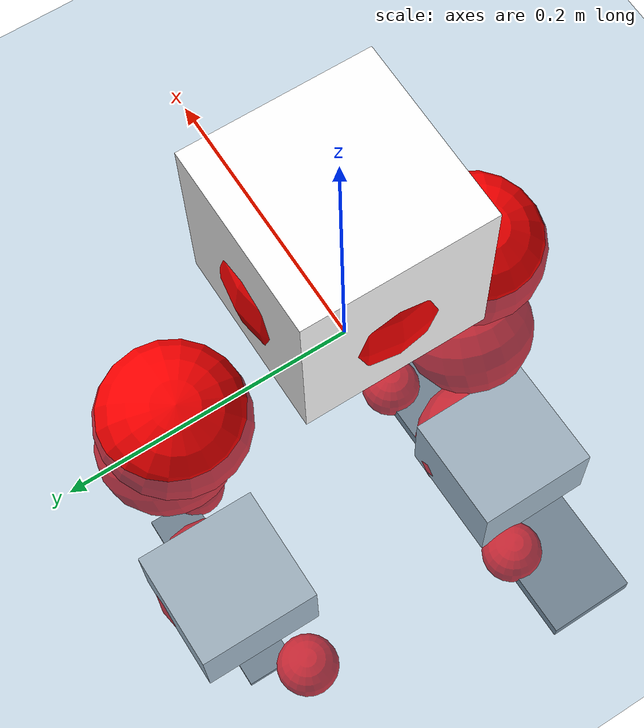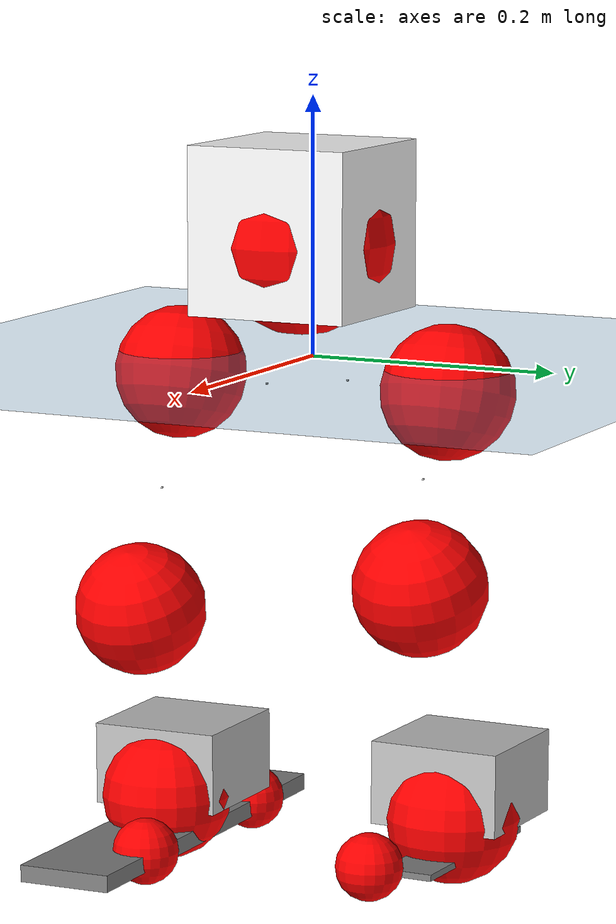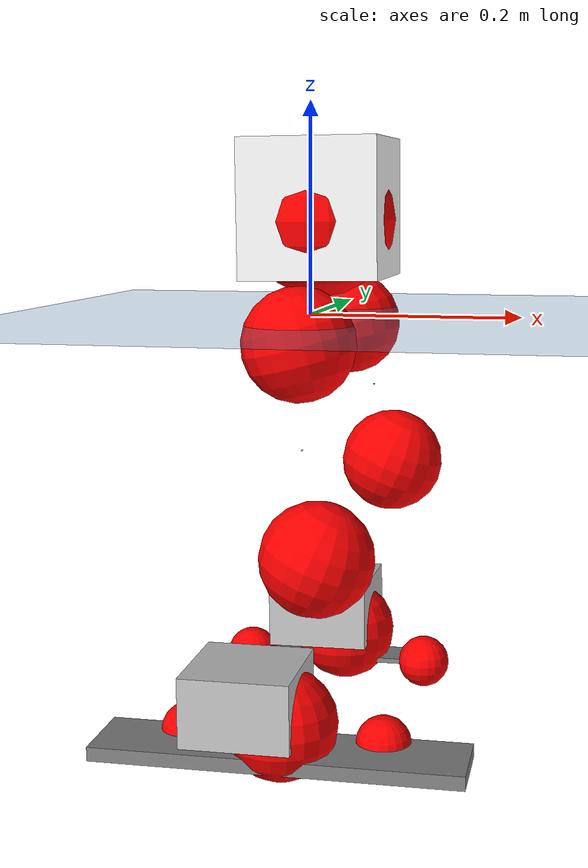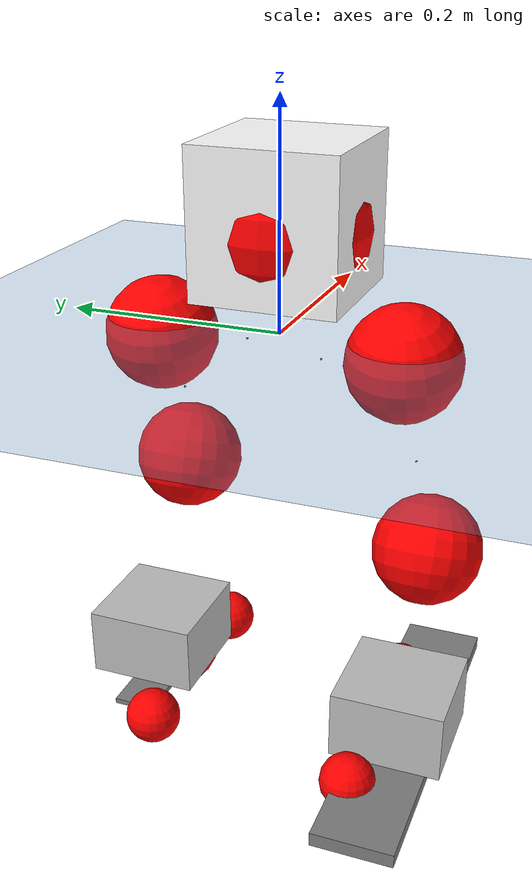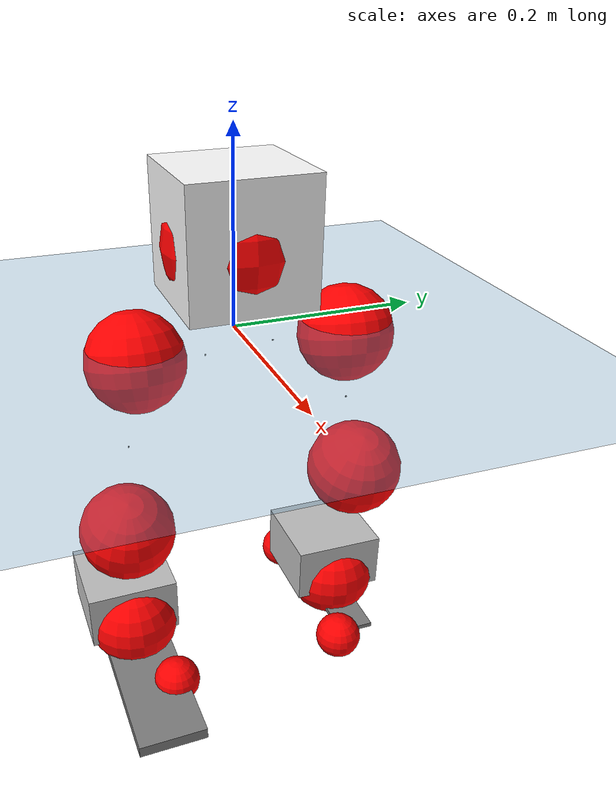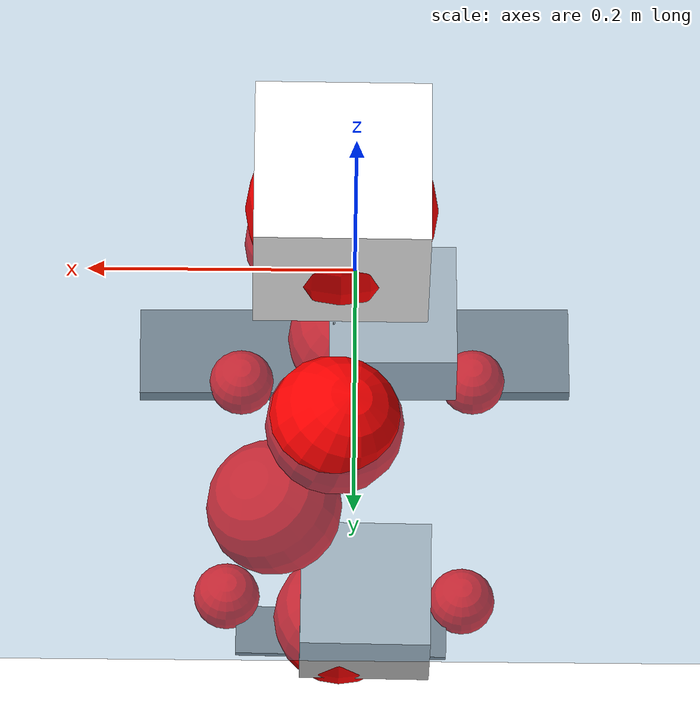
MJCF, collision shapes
<mujoco model="pi_12dof_release_v1">
  <compiler angle="radian" assetdir="assets" balanceinertia="true" inertiafromgeom="false"/>

  <option timestep="0.005" density="1.2" viscosity="2e-05"/>

  <size nkey="1"/>

  <visual>
    <quality shadowsize="8192"/>
    <map shadowclip="0.5"/>
  </visual>

  <default>
    <default class="/">
      <joint armature="0.01" damping="0.01" frictionloss="0.01"/>
      <geom contype="0" conaffinity="0" group="1" solref="-1000 -80"/>
      <site size="0.01 0.005 0.005" group="5"/>
      <general forcelimited="true" biastype="affine" gainprm="20" biasprm="0 -20 -0.5"/>
      <default class="foot">
        <geom size="0.0845 0.036 0.005" type="box" condim="6" group="4" priority="1" friction="0.9 0.2 0.2" solimp="0.015 1 0.005"/>
      </default>
      <default class="reward_collision_sphere">
        <geom group="5" rgba="1 0 0 1"/>
      </default>
    </default>
  </default>

  <asset>
    <texture type="skybox" colorspace="auto" name="//unnamed_texture_0" builtin="gradient" rgb1="0.95 0.95 0.95" rgb2="0.95 0.95 0.95" width="100" height="600"/>
    <texture type="2d" colorspace="auto" name="texplane" builtin="checker" rgb1="0.345 0.575 0.748" rgb2="0.345 0.575 0.748" markrgb="1 1 1" width="512" height="512"/>
    <material name="MatPlane" class="/" texture="texplane" texuniform="true" texrepeat="2 2" specular="0.9"/>
    <mesh name="baselink_1" class="/" file="baselink_1.STL"/>
    <mesh name="r_hip_pitch_link" class="/" file="r_hip_pitch_link.STL"/>
    <mesh name="r_hip_roll_link" class="/" file="r_hip_roll_link.STL"/>
    <mesh name="r_thigh_link" class="/" file="r_thigh_link.STL"/>
    <mesh name="r_calf_link" class="/" file="r_calf_link.STL"/>
    <mesh name="r_ankle_pitch_link" class="/" file="r_ankle_pitch_link.STL"/>
    <mesh name="r_ankle_roll_link" class="/" file="r_ankle_roll_link.STL"/>
    <mesh name="l_hip_pitch_link" class="/" file="l_hip_pitch_link.STL"/>
    <mesh name="l_hip_roll_link" class="/" file="l_hip_roll_link.STL"/>
    <mesh name="l_thigh_link" class="/" file="l_thigh_link.STL"/>
    <mesh name="l_calf_link" class="/" file="l_calf_link.STL"/>
    <mesh name="l_ankle_pitch_link" class="/" file="l_ankle_pitch_link.STL"/>
    <mesh name="l_ankle_roll_link" class="/" file="l_ankle_roll_link.STL"/>
  </asset>

  <worldbody>
    <geom name="floor" class="/" size="100 100 0.125" type="plane" group="0" material="MatPlane"/>
    <light name="toplight_shadow" class="/" pos="0 0 5" dir="0.0990148 0.0990148 -0.990148" type="directional" ambient="0.04 0.04 0.04" diffuse="0.55 0.55 0.55" specular="0.12 0.12 0.12"/>
    <light name="toplight_fill" class="/" pos="0 0 5" dir="0.0990148 0.0990148 -0.990148" type="directional" castshadow="false" ambient="0.04 0.04 0.04" diffuse="0.3 0.3 0.3" specular="0.08 0.08 0.08"/>
    <body name="trunk" pos="0.0113598 -0.00353903 0.0087588" quat="0.999987 0.00166951 -0.00489069 -4.91126e-05">
      <inertial pos="0.0122739 -0.00933659 0.0447114" quat="0.689706 0.0414664 0.0644265 0.720025" mass="4.29758" diaginertia="0.0349628 0.0435784 0.00599523"/>
      <joint name="//unnamed_joint_0" type="free"/>
      <geom name="//unnamed_geom_1" class="/" type="mesh" density="0" rgba="1 1 1 1" mesh="baselink_1"/>
      <geom name="//unnamed_geom_2" class="/" size="0.0647872 0.0647872 0.0647872" pos="0 0 0.0915743" type="box" rgba="1 1 1 1"/>
      <geom name="//unnamed_geom_3" class="reward_collision_sphere" size="0.0712659" pos="0 0 0.0801275"/>
      <site name="imu" class="/" pos="-0.0468361 0.0831053 0.034372" size="0.0129574"/>
      <camera name="track" class="/" pos="0 -2.74545 0" quat="0.707107 0.707107 0 0" mode="trackcom"/>
      <camera name="ego_camera" class="/" pos="0.102737 0 0.206042" quat="-0.5 -0.5 0.5 0.5"/>
      <body name="r_hip_pitch_link" pos="-0.0011286 -0.0310627 -0.0311841" quat="0.992741 0.00527936 -0.120084 0.00404738">
        <inertial pos="0.0101524 -0.077779 0.00525838" quat="-0.0424027 0.678775 0.00921866 0.733063" mass="0.653216" diaginertia="0.000428506 0.000390574 0.000118185"/>
        <joint name="r_hip_pitch_joint" class="/" pos="0 0 0" axis="0.0275364 -0.999361 0.0227879" stiffness="0.0713072" range="-1.75678 1.20813" armature="0.0189026" damping="0.00035218" frictionloss="0.00922305"/>
        <geom name="//unnamed_geom_4" class="/" type="mesh" density="0" rgba="0.75294 0.75294 0.75294 1" mesh="r_hip_pitch_link"/>
        <geom name="//unnamed_geom_5" class="/" size="0.000647872 0.000647872 0.000647872" type="box" rgba="0.75294 0.75294 0.75294 1"/>
        <body name="r_hip_roll_link" pos="0.00333132 -0.073283 0.00493229" quat="1 -4.80576e-05 5.28048e-05 -2.60099e-05">
          <inertial pos="-0.000832555 0.0150019 -0.0529467" quat="0.717727 -0.0846757 -0.103682 0.683336" mass="0.869366" diaginertia="0.00149781 0.00148016 0.000233507"/>
          <joint name="r_hip_roll_joint" class="/" pos="0 0 0" axis="-0.998359 -0.0328526 0.0468957" stiffness="0.0484332" range="-0.171523 0.20784" armature="0.00830765" damping="0.0427342" frictionloss="0.0171047"/>
          <geom name="//unnamed_geom_6" class="/" type="mesh" density="0" rgba="0.75294 0.75294 0.75294 1" mesh="r_hip_roll_link"/>
          <geom name="//unnamed_geom_7" class="/" size="0.000647872 0.000647872 0.000647872" type="box" rgba="0.75294 0.75294 0.75294 1"/>
          <geom name="//unnamed_geom_8" class="reward_collision_sphere" size="0.0518297"/>
          <body name="r_thigh_link" pos="-0.017114 -0.0154396 -0.0903141" quat="1 -0.000208571 -6.71166e-05 -0.000199957">
            <inertial pos="0.00597781 0.0109697 -0.0653364" quat="0.738201 0.674575 0.00261551 0.00040747" mass="0.198646" diaginertia="0.000514596 0.000485437 0.000113657"/>
            <joint name="r_thigh_joint" class="/" pos="0 0 0" axis="0.050629 0.0130166 -0.998633" range="-0.418548 0.443121" armature="0.00996477" damping="0.0653229" frictionloss="0.0237704"/>
            <geom name="//unnamed_geom_9" class="/" type="mesh" density="0" rgba="0.75294 0.75294 0.75294 1" mesh="r_thigh_link"/>
            <geom name="//unnamed_geom_10" class="/" size="0.000647872 0.000647872 0.000647872" type="box" rgba="0.75294 0.75294 0.75294 1"/>
            <body name="r_calf_link" pos="-0.008456 -0.0125792 -0.0954633" quat="0.947584 -5.18406e-05 0.319507 -0.000479628">
              <inertial pos="0.00516879 0.00931814 -0.0808743" quat="0.997249 0.0497334 0.0316554 0.0449411" mass="1.4247" diaginertia="0.0152998 0.0125064 0.000263168"/>
              <joint name="r_calf_joint" class="/" pos="0 0 0" axis="-0.0145742 -0.999736 0.0177717" stiffness="0.0712849" range="-1.94028 0.636119" armature="0.0215292" damping="0" frictionloss="0.013542"/>
              <geom name="//unnamed_geom_11" class="/" type="mesh" density="0" rgba="0.75294 0.75294 0.75294 1" mesh="r_calf_link"/>
              <geom name="//unnamed_geom_12" class="/" size="0.000647872 0.000647872 0.000647872" type="box" rgba="0.75294 0.75294 0.75294 1"/>
              <geom name="//unnamed_geom_13" class="reward_collision_sphere" size="0.0518297"/>
              <body name="r_ankle_pitch_link" pos="-0.00832286 0.0014494 -0.147794" quat="0.97994 -0.00289503 -0.199271 0.000916901">
                <inertial pos="0.0056944 0.00474671 0.0153468" quat="-0.068538 0.732391 0.0219683 0.677069" mass="0.286766" diaginertia="0.00134023 0.000880556 0.000191849"/>
                <joint name="r_ankle_pitch_joint" class="/" pos="0 0 0" axis="0.010577 -0.99938 -0.0335733" range="-1.29045 0.179954" armature="0.0131696" damping="0.0134776" frictionloss="0.00411542"/>
                <geom name="//unnamed_geom_14" class="/" type="mesh" density="0" rgba="0.75294 0.75294 0.75294 1" mesh="r_ankle_pitch_link"/>
                <geom name="//unnamed_geom_15" class="/" size="0.050534 0.0518297 0.0323936" type="box" rgba="0.75294 0.75294 0.75294 1"/>
                <body name="r_ankle_roll_link" pos="0.100056 0.00135536 -0.000342695" quat="1 1.84247e-06 -2.27873e-07 -4.79415e-06">
                  <inertial pos="-0.0369922 -0.000710501 -0.0335277" quat="0.528749 0.417676 0.456187 0.581261" mass="1.5763" diaginertia="0.00599052 0.00484255 0.000795749"/>
                  <joint name="r_ankle_roll_joint" class="/" pos="0 0 0" axis="-0.997415 -0.0703166 -0.0147834" range="-0.365497 0.425126" armature="0.0233544" damping="0" frictionloss="0.019005"/>
                  <geom name="//unnamed_geom_16" class="/" type="mesh" density="0" rgba="0.75294 0.75294 0.75294 1" mesh="r_ankle_roll_link"/>
                  <geom name="//unnamed_geom_17" class="/" type="mesh" rgba="0.75294 0.75294 0.75294 1" mesh="r_ankle_roll_link"/>
                  <geom name="right_foot" class="foot" size="0.171935 0.0374853 0.00661349" pos="-0.0698611 0 -0.0503659"/>
                  <geom name="//unnamed_geom_19" class="reward_collision_sphere" size="0.0518297" pos="-0.0684913 0 -0.0228936"/>
                  <geom name="//unnamed_geom_20" class="reward_collision_sphere" size="0.0259149" pos="0.0205474 0.0274545 -0.0457872"/>
                  <geom name="//unnamed_geom_21" class="reward_collision_sphere" size="0.0259149" pos="-0.164379 0.0274545 -0.0457872"/>
                  <site name="right_foot" class="foot" pos="-0.0698611 0 -0.0503659" size="0.0129574"/>
                </body>
              </body>
            </body>
          </body>
        </body>
      </body>
      <body name="l_hip_pitch_link" pos="0.00414837 0.0404125 -0.0231324" quat="0.992178 -5.37607e-05 -0.124831 -8.60035e-05">
        <inertial pos="0.000790627 0.0769925 0.0141096" quat="-0.0399828 0.694978 0.0378264 0.716922" mass="0.721925" diaginertia="0.000534084 0.000604287 0.000199693"/>
        <joint name="l_hip_pitch_joint" class="/" pos="0 0 0" axis="0.0367268 0.998912 -0.0287257" stiffness="0.00222472" range="-1.48328 1.70785" armature="0.00471484" damping="0.000514647" frictionloss="0.0153519"/>
        <geom name="//unnamed_geom_22" class="/" type="mesh" density="0" rgba="0.75294 0.75294 0.75294 1" mesh="l_hip_pitch_link"/>
        <geom name="//unnamed_geom_23" class="/" size="0.000647872 0.000647872 0.000647872" type="box" rgba="0.75294 0.75294 0.75294 1"/>
        <body name="l_hip_roll_link" pos="-0.00208563 0.0832637 -0.00336498" quat="1 -0.000179598 -0.000292197 -0.000560098">
          <inertial pos="0.0111126 -0.00355805 -0.0530605" quat="0.672258 -0.119911 -0.123699 0.719993" mass="0.804634" diaginertia="0.0017272 0.00120719 0.000269756"/>
          <joint name="l_hip_roll_joint" class="/" pos="0 0 0" axis="-0.999782 -0.0107292 -0.0179178" range="-0.199264 -0.129494" armature="0.019209" damping="0.0916347" frictionloss="0.0129008"/>
          <geom name="//unnamed_geom_24" class="/" type="mesh" density="0" rgba="0.75294 0.75294 0.75294 1" mesh="l_hip_roll_link"/>
          <geom name="//unnamed_geom_25" class="/" size="0.000647872 0.000647872 0.000647872" type="box" rgba="0.75294 0.75294 0.75294 1"/>
          <geom name="//unnamed_geom_26" class="reward_collision_sphere" size="0.0518297"/>
          <body name="l_thigh_link" pos="0.00996135 -0.00778756 -0.0674224" quat="1 0.000581927 -0.000566493 0.000175223">
            <inertial pos="-0.00950652 0.00835094 -0.0651597" quat="0.640816 0.766435 -0.0389642 -0.0203269" mass="0.282164" diaginertia="0.000600585 0.000419816 0.000123651"/>
            <joint name="l_thigh_joint" class="/" pos="0 0 0" axis="-0.0058992 -0.0071281 -0.999957" stiffness="0.0799618" range="-0.614522 0.481134" armature="0.0143103" damping="0.00211922" frictionloss="0.0150429"/>
            <geom name="//unnamed_geom_27" class="/" type="mesh" density="0" rgba="0.75294 0.75294 0.75294 1" mesh="l_thigh_link"/>
            <geom name="//unnamed_geom_28" class="/" size="0.000647872 0.000647872 0.000647872" type="box" rgba="0.75294 0.75294 0.75294 1"/>
            <body name="l_calf_link" pos="-0.00272758 0.006031 -0.0818652" quat="0.947786 -0.00256 0.318889 -0.00241484">
              <inertial pos="-0.000559601 -0.0087643 -0.0684706" quat="0.999976 0.00454483 -0.00236041 0.00476787" mass="1.91348" diaginertia="0.021394 0.0215883 0.000416091"/>
              <joint name="l_calf_joint" class="/" pos="0 0 0" axis="-0.0016905 0.999998 -0.000878681" range="-0.974865 1.36412" armature="0.0136984" damping="0.00407104" frictionloss="0.00871197"/>
              <geom name="//unnamed_geom_29" class="/" type="mesh" density="0" rgba="0.75294 0.75294 0.75294 1" mesh="l_calf_link"/>
              <geom name="//unnamed_geom_30" class="/" size="0.000647872 0.000647872 0.000647872" type="box" rgba="0.75294 0.75294 0.75294 1"/>
              <geom name="//unnamed_geom_31" class="reward_collision_sphere" size="0.0518297"/>
              <body name="l_ankle_pitch_link" pos="-0.00437568 0.00237507 -0.175256" quat="0.980054 -0.000148958 -0.198734 -6.64729e-05">
                <inertial pos="0.0165684 -0.0124859 -0.00145963" quat="0.00143127 0.707216 0.000873202 0.706995" mass="0.515777" diaginertia="0.00154812 0.00129766 0.000229964"/>
                <joint name="l_ankle_pitch_joint" class="/" pos="0 0 0" axis="0.00106 0.999999 0.000762793" stiffness="0.00401119" range="-0.215979 1.38808" armature="0.0204381" damping="0.016812" frictionloss="0.0098067"/>
                <geom name="//unnamed_geom_32" class="/" type="mesh" density="0" rgba="0.75294 0.75294 0.75294 1" mesh="l_ankle_pitch_link"/>
                <geom name="//unnamed_geom_33" class="/" size="0.050534 0.0518297 0.0323936" type="box" rgba="0.75294 0.75294 0.75294 1"/>
                <body name="l_ankle_roll_link" pos="0.0877878 0.00252444 -0.00387113" quat="0.999998 -0.000652675 -0.00104757 -0.00152029">
                  <inertial pos="-0.0393553 -0.000617616 -0.0172522" quat="0.555545 0.447264 0.431194 0.552627" mass="1.47085" diaginertia="0.00655858 0.00587969 0.000616007"/>
                  <joint name="l_ankle_roll_joint" class="/" pos="0 0 0" axis="-0.999542 -0.0275012 0.0125892" stiffness="0.000814728" range="-0.281584 0.166396" armature="0.00548861" damping="0.0115077" frictionloss="0.0127778"/>
                  <geom name="//unnamed_geom_34" class="/" type="mesh" density="0" rgba="0.75294 0.75294 0.75294 1" mesh="l_ankle_roll_link"/>
                  <geom name="//unnamed_geom_35" class="/" type="mesh" rgba="0.75294 0.75294 0.75294 1" mesh="l_ankle_roll_link"/>
                  <geom name="left_foot" class="foot" size="0.0826175 0.0201846 0.00250869" pos="-0.0698611 0 -0.0503659"/>
                  <geom name="//unnamed_geom_37" class="reward_collision_sphere" size="0.0518297" pos="-0.0684913 0 -0.0228936"/>
                  <geom name="//unnamed_geom_38" class="reward_collision_sphere" size="0.0259149" pos="0.0205474 -0.0274545 -0.0457872"/>
                  <geom name="//unnamed_geom_39" class="reward_collision_sphere" size="0.0259149" pos="-0.164379 -0.0274545 -0.0457872"/>
                  <site name="left_foot" class="foot" pos="-0.0698611 0 -0.0503659" size="0.0129574"/>
                </body>
              </body>
            </body>
          </body>
        </body>
      </body>
    </body>
  </worldbody>

  <contact>
    <pair class="/" geom1="floor" geom2="right_foot" name="//unnamed_contact_1"/>
    <pair class="/" geom1="floor" geom2="left_foot" name="//unnamed_contact_0"/>
  </contact>

  <actuator>
    <general name="r_hip_pitch_joint" class="/" joint="r_hip_pitch_joint" forcerange="-26.7446 26.7446" gainprm="26.2008" biasprm="0 -26.2008 -0.687801"/>
    <general name="r_hip_roll_joint" class="/" joint="r_hip_roll_joint" forcerange="-41.3998 41.3998" gainprm="26.2008" biasprm="0 -26.2008 -0.687801"/>
    <general name="r_thigh_joint" class="/" joint="r_thigh_joint" forcerange="-18.077 18.077" gainprm="26.2008" biasprm="0 -26.2008 -0.687801"/>
    <general name="r_calf_joint" class="/" joint="r_calf_joint" forcerange="-33.6659 33.6659" gainprm="26.2008" biasprm="0 -26.2008 -0.687801"/>
    <general name="r_ankle_pitch_joint" class="/" joint="r_ankle_pitch_joint" forcerange="-20.0967 20.0967" gainprm="26.2008" biasprm="0 -26.2008 -0.687801"/>
    <general name="r_ankle_roll_joint" class="/" joint="r_ankle_roll_joint" forcerange="-17.7454 17.7454" gainprm="26.2008" biasprm="0 -26.2008 -0.687801"/>
    <general name="l_hip_pitch_joint" class="/" joint="l_hip_pitch_joint" forcerange="-23.0586 23.0586" gainprm="26.2008" biasprm="0 -26.2008 -0.687801"/>
    <general name="l_hip_roll_joint" class="/" joint="l_hip_roll_joint" forcerange="-13.6428 13.6428" gainprm="26.2008" biasprm="0 -26.2008 -0.687801"/>
    <general name="l_thigh_joint" class="/" joint="l_thigh_joint" forcerange="-41.927 41.927" gainprm="26.2008" biasprm="0 -26.2008 -0.687801"/>
    <general name="l_calf_joint" class="/" joint="l_calf_joint" forcerange="-24.7278 24.7278" gainprm="26.2008" biasprm="0 -26.2008 -0.687801"/>
    <general name="l_ankle_pitch_joint" class="/" joint="l_ankle_pitch_joint" forcerange="-17.0294 17.0294" gainprm="26.2008" biasprm="0 -26.2008 -0.687801"/>
    <general name="l_ankle_roll_joint" class="/" joint="l_ankle_roll_joint" forcerange="-9.85742 9.85742" gainprm="26.2008" biasprm="0 -26.2008 -0.687801"/>
  </actuator>

  <sensor>
    <gyro site="imu" name="imu_angular_velocity"/>
    <velocimeter site="imu" name="imu_linear_velocity"/>
    <framelinvel objtype="site" objname="left_foot" name="left_foot_global_linear_velocity"/>
    <framelinvel objtype="site" objname="right_foot" name="right_foot_global_linear_velocity"/>
  </sensor>

  <keyframe>
    <key name="home" qpos="0 0 0.291 1 0 0 0 0.4 0 0 -0.8 0.4 0 -0.4 0 0 0.8 -0.4 0"/>
  </keyframe>
</mujoco>
